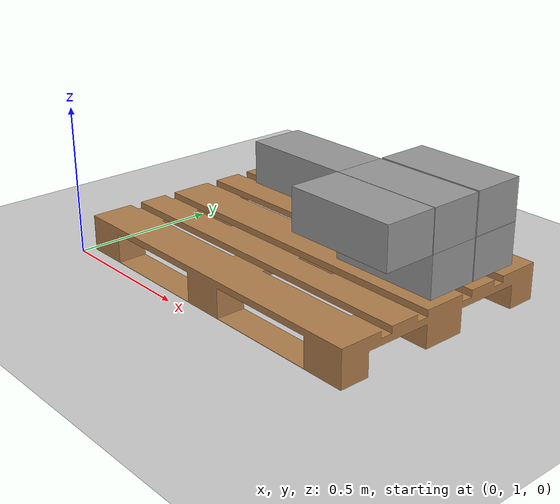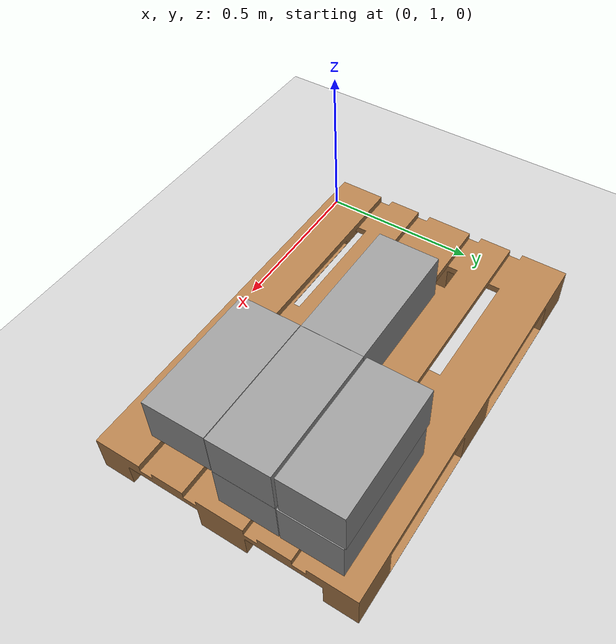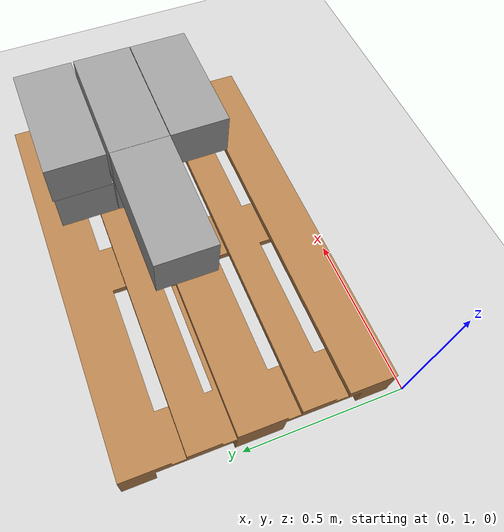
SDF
<sdf version="1.7">
 <world name="default">
  <model name="ground_plane">
   <static>1</static>
   <link name="link">
    <collision name="collision">
     <geometry><plane><normal>0 0 1</normal><size>100 100</size></plane></geometry>
     <surface>
      <contact><collide_bitmask>65535</collide_bitmask></contact>
      <friction><ode><mu>100</mu><mu2>50</mu2></ode></friction>
     </surface>
    </collision>
    <visual name="visual">
     <cast_shadows>0</cast_shadows>
     <geometry><plane><normal>0 0 1</normal><size>100 100</size></plane></geometry>
     <material>
      <script><uri>file://media/materials/scripts/gazebo.material</uri><name>Gazebo/Grey</name></script>
     </material>
    </visual>
   </link>
  </model>
  <model name="pedana">
   <link name="base">
    <inertial>
     <mass>25</mass>
     <inertia><ixx>1.36434</ixx><ixy>0</ixy><ixz>0</ixz><iyy>3.03101</iyy><iyz>0</iyz><izz>4.33333</izz></inertia>
    </inertial>
    <self_collide>1</self_collide>
    <visual name="visual">
     <pose>-0.6 -0.4 -0.083 0 -0 0</pose>
     <geometry>
      <mesh><uri>/home/marco/catkin_ws_iliad/src/iliad/meshes/pallet_base.stl</uri><scale>1 1 1</scale></mesh>
     </geometry>
     <material>
      <lighting>1</lighting>
      <script><uri>file://media/materials/scripts/gazebo.material</uri><name>Gazebo/Wood</name></script>
      <shader type="pixel"><normal_map>__default__</normal_map></shader>
      <ambient>0.3 0.3 0.3 1</ambient>
      <diffuse>0.7 0.7 0.7 1</diffuse>
      <specular>0.01 0.01 0.01 1</specular>
      <emissive>0 0 0 1</emissive>
     </material>
    </visual>
    <collision name="collision">
     <geometry><box><size>1.2 0.8 0.122</size></box></geometry>
     <surface>
      <friction>
       <ode><mu>1</mu><mu2>1</mu2><fdir1>0 0 0</fdir1><slip1>0</slip1><slip2>0</slip2></ode>
       <torsional>
        <coefficient>1</coefficient>
        <patch_radius>0</patch_radius>
        <surface_radius>0</surface_radius>
        <use_patch_radius>1</use_patch_radius>
        <ode><slip>0</slip></ode>
       </torsional>
      </friction>
      <bounce><restitution_coefficient>0</restitution_coefficient><threshold>1e+06</threshold></bounce>
      <contact>
       <collide_without_contact>0</collide_without_contact>
       <collide_without_contact_bitmask>1</collide_without_contact_bitmask>
       <collide_bitmask>1</collide_bitmask>
       <ode>
        <soft_cfm>0</soft_cfm>
        <soft_erp>0.2</soft_erp>
        <kp>1e+13</kp>
        <kd>1</kd>
        <max_vel>0.01</max_vel>
        <min_depth>0</min_depth>
       </ode>
       <bullet>
        <split_impulse>1</split_impulse>
        <split_impulse_penetration_threshold>-0.01</split_impulse_penetration_threshold>
        <soft_cfm>0</soft_cfm>
        <soft_erp>0.2</soft_erp>
        <kp>1e+13</kp>
        <kd>1</kd>
       </bullet>
      </contact>
     </surface>
    </collision>
   </link>
   <static>1</static>
   <pose>0.617422 1.44083 0.061 2.9e-05 -2e-05 -0.00384</pose>
  </model>
  <model name="box_38_18_14_7">
   <link name="link_0">
    <inertial>
     <mass>2.5</mass>
     <inertia>
      <ixx>0.0108332</ixx>
      <ixy>0</ixy>
      <ixz>0</ixz>
      <iyy>0.0341665</iyy>
      <iyz>0</iyz>
      <izz>0.0368332</izz>
     </inertia>
    </inertial>
    <visual name="visual">
     <geometry><box><size>0.38 0.18 0.14</size></box></geometry>
     <material>
      <lighting>1</lighting>
      <script><uri>file://media/materials/scripts/gazebo.material</uri><name>Gazebo/Grey</name></script>
      <shader type="pixel"><normal_map>__default__</normal_map></shader>
      <ambient>0.3 0.3 0.3 1</ambient>
      <diffuse>0.7 0.7 0.7 1</diffuse>
      <specular>0.01 0.01 0.01 1</specular>
      <emissive>0 0 0 1</emissive>
     </material>
    </visual>
    <collision name="collision">
     <geometry><box><size>0.38 0.18 0.14</size></box></geometry>
     <surface>
      <friction>
       <ode><mu>0.6</mu><mu2>0.6</mu2><fdir1>0 0 0</fdir1><slip1>0</slip1><slip2>0</slip2></ode>
       <torsional>
        <coefficient>1</coefficient>
        <patch_radius>0</patch_radius>
        <surface_radius>0</surface_radius>
        <use_patch_radius>1</use_patch_radius>
        <ode><slip>0</slip></ode>
       </torsional>
      </friction>
      <bounce><restitution_coefficient>0</restitution_coefficient><threshold>1e+06</threshold></bounce>
      <contact>
       <collide_without_contact>0</collide_without_contact>
       <collide_without_contact_bitmask>1</collide_without_contact_bitmask>
       <collide_bitmask>1</collide_bitmask>
       <ode>
        <soft_cfm>0</soft_cfm>
        <soft_erp>0.2</soft_erp>
        <kp>1e+13</kp>
        <kd>1</kd>
        <max_vel>0.01</max_vel>
        <min_depth>0.01</min_depth>
       </ode>
       <bullet>
        <split_impulse>1</split_impulse>
        <split_impulse_penetration_threshold>-0.01</split_impulse_penetration_threshold>
        <soft_cfm>0</soft_cfm>
        <soft_erp>0.2</soft_erp>
        <kp>1e+13</kp>
        <kd>1</kd>
       </bullet>
      </contact>
     </surface>
    </collision>
   </link>
   <static>1</static>
   <pose>0.993277 1.5036 0.192009 2.8e-05 -2e-05 -0.000315</pose>
  </model>
  <model name="box_38_18_14_10">
   <link name="link_0">
    <inertial>
     <mass>2.5</mass>
     <inertia>
      <ixx>0.0108332</ixx>
      <ixy>0</ixy>
      <ixz>0</ixz>
      <iyy>0.0341665</iyy>
      <iyz>0</iyz>
      <izz>0.0368332</izz>
     </inertia>
    </inertial>
    <visual name="visual">
     <geometry><box><size>0.38 0.18 0.14</size></box></geometry>
     <material>
      <lighting>1</lighting>
      <script><uri>file://media/materials/scripts/gazebo.material</uri><name>Gazebo/Grey</name></script>
      <shader type="pixel"><normal_map>__default__</normal_map></shader>
      <ambient>0.3 0.3 0.3 1</ambient>
      <diffuse>0.7 0.7 0.7 1</diffuse>
      <specular>0.01 0.01 0.01 1</specular>
      <emissive>0 0 0 1</emissive>
     </material>
    </visual>
    <collision name="collision">
     <geometry><box><size>0.38 0.18 0.14</size></box></geometry>
     <surface>
      <friction>
       <ode><mu>0.6</mu><mu2>0.6</mu2><fdir1>0 0 0</fdir1><slip1>0</slip1><slip2>0</slip2></ode>
       <torsional>
        <coefficient>1</coefficient>
        <patch_radius>0</patch_radius>
        <surface_radius>0</surface_radius>
        <use_patch_radius>1</use_patch_radius>
        <ode><slip>0</slip></ode>
       </torsional>
      </friction>
      <bounce><restitution_coefficient>0</restitution_coefficient><threshold>1e+06</threshold></bounce>
      <contact>
       <collide_without_contact>0</collide_without_contact>
       <collide_without_contact_bitmask>1</collide_without_contact_bitmask>
       <collide_bitmask>1</collide_bitmask>
       <ode>
        <soft_cfm>0</soft_cfm>
        <soft_erp>0.2</soft_erp>
        <kp>1e+13</kp>
        <kd>1</kd>
        <max_vel>0.01</max_vel>
        <min_depth>0.01</min_depth>
       </ode>
       <bullet>
        <split_impulse>1</split_impulse>
        <split_impulse_penetration_threshold>-0.01</split_impulse_penetration_threshold>
        <soft_cfm>0</soft_cfm>
        <soft_erp>0.2</soft_erp>
        <kp>1e+13</kp>
        <kd>1</kd>
       </bullet>
      </contact>
     </surface>
    </collision>
   </link>
   <static>1</static>
   <pose>0.993832 1.68679 0.192015 2.6e-05 -2e-05 0.000237</pose>
  </model>
  <model name="box_38_18_14_18">
   <link name="link_0">
    <inertial>
     <mass>2.5</mass>
     <inertia>
      <ixx>0.0108332</ixx>
      <ixy>0</ixy>
      <ixz>0</ixz>
      <iyy>0.0341665</iyy>
      <iyz>0</iyz>
      <izz>0.0368332</izz>
     </inertia>
    </inertial>
    <visual name="visual">
     <geometry><box><size>0.38 0.18 0.14</size></box></geometry>
     <material>
      <lighting>1</lighting>
      <script><uri>file://media/materials/scripts/gazebo.material</uri><name>Gazebo/Grey</name></script>
      <shader type="pixel"><normal_map>__default__</normal_map></shader>
      <ambient>0.3 0.3 0.3 1</ambient>
      <diffuse>0.7 0.7 0.7 1</diffuse>
      <specular>0.01 0.01 0.01 1</specular>
      <emissive>0 0 0 1</emissive>
     </material>
    </visual>
    <collision name="collision">
     <geometry><box><size>0.38 0.18 0.14</size></box></geometry>
     <surface>
      <friction>
       <ode><mu>0.6</mu><mu2>0.6</mu2><fdir1>0 0 0</fdir1><slip1>0</slip1><slip2>0</slip2></ode>
       <torsional>
        <coefficient>1</coefficient>
        <patch_radius>0</patch_radius>
        <surface_radius>0</surface_radius>
        <use_patch_radius>1</use_patch_radius>
        <ode><slip>0</slip></ode>
       </torsional>
      </friction>
      <bounce><restitution_coefficient>0</restitution_coefficient><threshold>1e+06</threshold></bounce>
      <contact>
       <collide_without_contact>0</collide_without_contact>
       <collide_without_contact_bitmask>1</collide_without_contact_bitmask>
       <collide_bitmask>1</collide_bitmask>
       <ode>
        <soft_cfm>0</soft_cfm>
        <soft_erp>0.2</soft_erp>
        <kp>1e+13</kp>
        <kd>1</kd>
        <max_vel>0.01</max_vel>
        <min_depth>0.01</min_depth>
       </ode>
       <bullet>
        <split_impulse>1</split_impulse>
        <split_impulse_penetration_threshold>-0.01</split_impulse_penetration_threshold>
        <soft_cfm>0</soft_cfm>
        <soft_erp>0.2</soft_erp>
        <kp>1e+13</kp>
        <kd>1</kd>
       </bullet>
      </contact>
     </surface>
    </collision>
   </link>
   <static>1</static>
   <pose>0.992286 1.32173 0.331955 0.000384 -6e-05 -0.000365</pose>
  </model>
  <model name="box_38_18_14_19">
   <link name="link_0">
    <inertial>
     <mass>2.5</mass>
     <inertia>
      <ixx>0.0108332</ixx>
      <ixy>0</ixy>
      <ixz>0</ixz>
      <iyy>0.0341665</iyy>
      <iyz>0</iyz>
      <izz>0.0368332</izz>
     </inertia>
    </inertial>
    <visual name="visual">
     <geometry><box><size>0.38 0.18 0.14</size></box></geometry>
     <material>
      <lighting>1</lighting>
      <script><uri>file://media/materials/scripts/gazebo.material</uri><name>Gazebo/Grey</name></script>
      <shader type="pixel"><normal_map>__default__</normal_map></shader>
      <ambient>0.3 0.3 0.3 1</ambient>
      <diffuse>0.7 0.7 0.7 1</diffuse>
      <specular>0.01 0.01 0.01 1</specular>
      <emissive>0 0 0 1</emissive>
     </material>
    </visual>
    <collision name="collision">
     <geometry><box><size>0.38 0.18 0.14</size></box></geometry>
     <surface>
      <friction>
       <ode><mu>0.6</mu><mu2>0.6</mu2><fdir1>0 0 0</fdir1><slip1>0</slip1><slip2>0</slip2></ode>
       <torsional>
        <coefficient>1</coefficient>
        <patch_radius>0</patch_radius>
        <surface_radius>0</surface_radius>
        <use_patch_radius>1</use_patch_radius>
        <ode><slip>0</slip></ode>
       </torsional>
      </friction>
      <bounce><restitution_coefficient>0</restitution_coefficient><threshold>1e+06</threshold></bounce>
      <contact>
       <collide_without_contact>0</collide_without_contact>
       <collide_without_contact_bitmask>1</collide_without_contact_bitmask>
       <collide_bitmask>1</collide_bitmask>
       <ode>
        <soft_cfm>0</soft_cfm>
        <soft_erp>0.2</soft_erp>
        <kp>1e+13</kp>
        <kd>1</kd>
        <max_vel>0.01</max_vel>
        <min_depth>0.01</min_depth>
       </ode>
       <bullet>
        <split_impulse>1</split_impulse>
        <split_impulse_penetration_threshold>-0.01</split_impulse_penetration_threshold>
        <soft_cfm>0</soft_cfm>
        <soft_erp>0.2</soft_erp>
        <kp>1e+13</kp>
        <kd>1</kd>
       </bullet>
      </contact>
     </surface>
    </collision>
   </link>
   <static>1</static>
   <pose>0.612685 1.50319 0.331879 -0.000282 1e-05 6e-05</pose>
  </model>
  <model name="box_38_18_14_21">
   <link name="link_0">
    <inertial>
     <mass>2.5</mass>
     <inertia>
      <ixx>0.0108332</ixx>
      <ixy>0</ixy>
      <ixz>0</ixz>
      <iyy>0.0341665</iyy>
      <iyz>0</iyz>
      <izz>0.0368332</izz>
     </inertia>
    </inertial>
    <visual name="visual">
     <geometry><box><size>0.38 0.18 0.14</size></box></geometry>
     <material>
      <lighting>1</lighting>
      <script><uri>file://media/materials/scripts/gazebo.material</uri><name>Gazebo/Grey</name></script>
      <shader type="pixel"><normal_map>__default__</normal_map></shader>
      <ambient>0.3 0.3 0.3 1</ambient>
      <diffuse>0.7 0.7 0.7 1</diffuse>
      <specular>0.01 0.01 0.01 1</specular>
      <emissive>0 0 0 1</emissive>
     </material>
    </visual>
    <collision name="collision">
     <geometry><box><size>0.38 0.18 0.14</size></box></geometry>
     <surface>
      <friction>
       <ode><mu>0.6</mu><mu2>0.6</mu2><fdir1>0 0 0</fdir1><slip1>0</slip1><slip2>0</slip2></ode>
       <torsional>
        <coefficient>1</coefficient>
        <patch_radius>0</patch_radius>
        <surface_radius>0</surface_radius>
        <use_patch_radius>1</use_patch_radius>
        <ode><slip>0</slip></ode>
       </torsional>
      </friction>
      <bounce><restitution_coefficient>0</restitution_coefficient><threshold>1e+06</threshold></bounce>
      <contact>
       <collide_without_contact>0</collide_without_contact>
       <collide_without_contact_bitmask>1</collide_without_contact_bitmask>
       <collide_bitmask>1</collide_bitmask>
       <ode>
        <soft_cfm>0</soft_cfm>
        <soft_erp>0.2</soft_erp>
        <kp>1e+13</kp>
        <kd>1</kd>
        <max_vel>0.01</max_vel>
        <min_depth>0.01</min_depth>
       </ode>
       <bullet>
        <split_impulse>1</split_impulse>
        <split_impulse_penetration_threshold>-0.01</split_impulse_penetration_threshold>
        <soft_cfm>0</soft_cfm>
        <soft_erp>0.2</soft_erp>
        <kp>1e+13</kp>
        <kd>1</kd>
       </bullet>
      </contact>
     </surface>
    </collision>
   </link>
   <static>1</static>
   <pose>0.993032 1.50351 0.331903 9e-06 -2.3e-05 0.00038</pose>
  </model>
  <model name="box_38_18_14_23">
   <link name="link_0">
    <inertial>
     <mass>2.5</mass>
     <inertia>
      <ixx>0.0108332</ixx>
      <ixy>0</ixy>
      <ixz>0</ixz>
      <iyy>0.0341665</iyy>
      <iyz>0</iyz>
      <izz>0.0368332</izz>
     </inertia>
    </inertial>
    <visual name="visual">
     <geometry><box><size>0.38 0.18 0.14</size></box></geometry>
     <material>
      <lighting>1</lighting>
      <script><uri>file://media/materials/scripts/gazebo.material</uri><name>Gazebo/Grey</name></script>
      <shader type="pixel"><normal_map>__default__</normal_map></shader>
      <ambient>0.3 0.3 0.3 1</ambient>
      <diffuse>0.7 0.7 0.7 1</diffuse>
      <specular>0.01 0.01 0.01 1</specular>
      <emissive>0 0 0 1</emissive>
     </material>
    </visual>
    <collision name="collision">
     <geometry><box><size>0.38 0.18 0.14</size></box></geometry>
     <surface>
      <friction>
       <ode><mu>0.6</mu><mu2>0.6</mu2><fdir1>0 0 0</fdir1><slip1>0</slip1><slip2>0</slip2></ode>
       <torsional>
        <coefficient>1</coefficient>
        <patch_radius>0</patch_radius>
        <surface_radius>0</surface_radius>
        <use_patch_radius>1</use_patch_radius>
        <ode><slip>0</slip></ode>
       </torsional>
      </friction>
      <bounce><restitution_coefficient>0</restitution_coefficient><threshold>1e+06</threshold></bounce>
      <contact>
       <collide_without_contact>0</collide_without_contact>
       <collide_without_contact_bitmask>1</collide_without_contact_bitmask>
       <collide_bitmask>1</collide_bitmask>
       <ode>
        <soft_cfm>0</soft_cfm>
        <soft_erp>0.2</soft_erp>
        <kp>1e+13</kp>
        <kd>1</kd>
        <max_vel>0.01</max_vel>
        <min_depth>0.01</min_depth>
       </ode>
       <bullet>
        <split_impulse>1</split_impulse>
        <split_impulse_penetration_threshold>-0.01</split_impulse_penetration_threshold>
        <soft_cfm>0</soft_cfm>
        <soft_erp>0.2</soft_erp>
        <kp>1e+13</kp>
        <kd>1</kd>
       </bullet>
      </contact>
     </surface>
    </collision>
   </link>
   <static>1</static>
   <pose>0.991084 1.69121 0.331973 2.9e-05 0.000187 -0.000653</pose>
  </model>
 </world>
</sdf>
